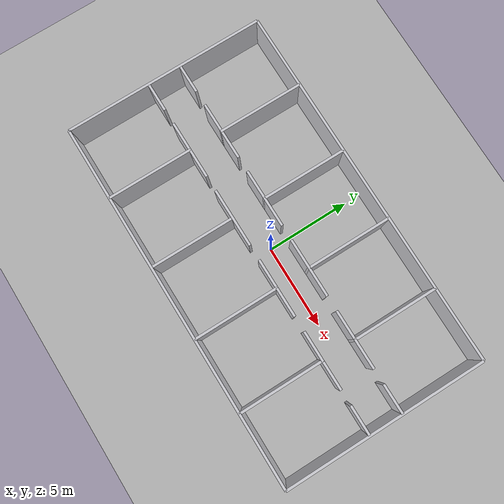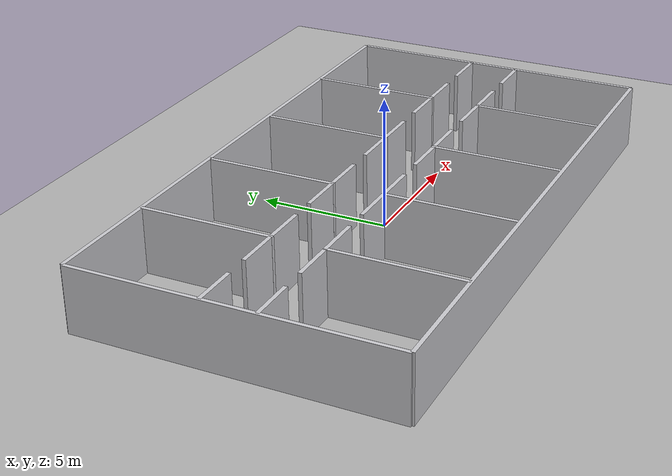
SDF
<?xml version="1.0"?>
<sdf version="1.8">
  <world name="office_world">
    <physics name="default_physics" type="dartsim">
      <max_step_size>0.004</max_step_size>
      <real_time_factor>1.0</real_time_factor>
    </physics>

    <plugin filename="gz-sim-physics-system" name="gz::sim::systems::Physics"/>
    <plugin filename="gz-sim-sensors-system" name="gz::sim::systems::Sensors">
      <render_engine>ogre2</render_engine>
    </plugin>
    <plugin filename="gz-sim-scene-broadcaster-system" name="gz::sim::systems::SceneBroadcaster"/>
    <plugin filename="gz-sim-user-commands-system" name="gz::sim::systems::UserCommands"/>

    <light type="directional" name="sun">
      <cast_shadows>false</cast_shadows>
      <pose>0 0 10 0 0 0</pose>
      <diffuse>0.8 0.8 0.8 1</diffuse>
      <direction>-0.5 0.1 -0.9</direction>
    </light>

    <model name="ground_plane">
      <static>true</static>
      <link name="link">
        <collision name="collision">
          <geometry><plane><normal>0 0 1</normal><size>30 20</size></plane></geometry>
        </collision>
        <visual name="visual">
          <geometry><plane><normal>0 0 1</normal><size>30 20</size></plane></geometry>
          <material><ambient>0.7 0.7 0.7 1</ambient><diffuse>0.7 0.7 0.7 1</diffuse></material>
        </visual>
      </link>
    </model>

    <model name="building">
      <static>true</static>
      <link name="link">
        <collision name="c0">
          <pose>0 6 1.25 0 0 0</pose>
          <geometry><box><size>22 0.15 2.5</size></box></geometry>
        </collision>
        <visual name="v0">
          <pose>0 6 1.25 0 0 0</pose>
          <geometry><box><size>22 0.15 2.5</size></box></geometry>
          <material><ambient>0.8 0.8 0.82 1</ambient><diffuse>0.8 0.8 0.82 1</diffuse></material>
        </visual>
        <collision name="c1">
          <pose>0 -6 1.25 0 0 0</pose>
          <geometry><box><size>22 0.15 2.5</size></box></geometry>
        </collision>
        <visual name="v1">
          <pose>0 -6 1.25 0 0 0</pose>
          <geometry><box><size>22 0.15 2.5</size></box></geometry>
          <material><ambient>0.8 0.8 0.82 1</ambient><diffuse>0.8 0.8 0.82 1</diffuse></material>
        </visual>
        <collision name="c2">
          <pose>-11 0 1.25 0 0 0</pose>
          <geometry><box><size>0.15 12 2.5</size></box></geometry>
        </collision>
        <visual name="v2">
          <pose>-11 0 1.25 0 0 0</pose>
          <geometry><box><size>0.15 12 2.5</size></box></geometry>
          <material><ambient>0.8 0.8 0.82 1</ambient><diffuse>0.8 0.8 0.82 1</diffuse></material>
        </visual>
        <collision name="c3">
          <pose>11 0 1.25 0 0 0</pose>
          <geometry><box><size>0.15 12 2.5</size></box></geometry>
        </collision>
        <visual name="v3">
          <pose>11 0 1.25 0 0 0</pose>
          <geometry><box><size>0.15 12 2.5</size></box></geometry>
          <material><ambient>0.8 0.8 0.82 1</ambient><diffuse>0.8 0.8 0.82 1</diffuse></material>
        </visual>
        <collision name="c4">
          <pose>-10.12 1 1.25 0 0 0</pose>
          <geometry><box><size>1.75 0.15 2.5</size></box></geometry>
        </collision>
        <visual name="v4">
          <pose>-10.12 1 1.25 0 0 0</pose>
          <geometry><box><size>1.75 0.15 2.5</size></box></geometry>
          <material><ambient>0.8 0.8 0.82 1</ambient><diffuse>0.8 0.8 0.82 1</diffuse></material>
        </visual>
        <collision name="c5">
          <pose>-6.6 1 1.25 0 0 0</pose>
          <geometry><box><size>3.5 0.15 2.5</size></box></geometry>
        </collision>
        <visual name="v5">
          <pose>-6.6 1 1.25 0 0 0</pose>
          <geometry><box><size>3.5 0.15 2.5</size></box></geometry>
          <material><ambient>0.8 0.8 0.82 1</ambient><diffuse>0.8 0.8 0.82 1</diffuse></material>
        </visual>
        <collision name="c6">
          <pose>-2.2 1 1.25 0 0 0</pose>
          <geometry><box><size>3.5 0.15 2.5</size></box></geometry>
        </collision>
        <visual name="v6">
          <pose>-2.2 1 1.25 0 0 0</pose>
          <geometry><box><size>3.5 0.15 2.5</size></box></geometry>
          <material><ambient>0.8 0.8 0.82 1</ambient><diffuse>0.8 0.8 0.82 1</diffuse></material>
        </visual>
        <collision name="c7">
          <pose>2.2 1 1.25 0 0 0</pose>
          <geometry><box><size>3.5 0.15 2.5</size></box></geometry>
        </collision>
        <visual name="v7">
          <pose>2.2 1 1.25 0 0 0</pose>
          <geometry><box><size>3.5 0.15 2.5</size></box></geometry>
          <material><ambient>0.8 0.8 0.82 1</ambient><diffuse>0.8 0.8 0.82 1</diffuse></material>
        </visual>
        <collision name="c8">
          <pose>6.6 1 1.25 0 0 0</pose>
          <geometry><box><size>3.5 0.15 2.5</size></box></geometry>
        </collision>
        <visual name="v8">
          <pose>6.6 1 1.25 0 0 0</pose>
          <geometry><box><size>3.5 0.15 2.5</size></box></geometry>
          <material><ambient>0.8 0.8 0.82 1</ambient><diffuse>0.8 0.8 0.82 1</diffuse></material>
        </visual>
        <collision name="c9">
          <pose>10.12 1 1.25 0 0 0</pose>
          <geometry><box><size>1.75 0.15 2.5</size></box></geometry>
        </collision>
        <visual name="v9">
          <pose>10.12 1 1.25 0 0 0</pose>
          <geometry><box><size>1.75 0.15 2.5</size></box></geometry>
          <material><ambient>0.8 0.8 0.82 1</ambient><diffuse>0.8 0.8 0.82 1</diffuse></material>
        </visual>
        <collision name="c10">
          <pose>-10.12 -1 1.25 0 0 0</pose>
          <geometry><box><size>1.75 0.15 2.5</size></box></geometry>
        </collision>
        <visual name="v10">
          <pose>-10.12 -1 1.25 0 0 0</pose>
          <geometry><box><size>1.75 0.15 2.5</size></box></geometry>
          <material><ambient>0.8 0.8 0.82 1</ambient><diffuse>0.8 0.8 0.82 1</diffuse></material>
        </visual>
        <collision name="c11">
          <pose>-6.6 -1 1.25 0 0 0</pose>
          <geometry><box><size>3.5 0.15 2.5</size></box></geometry>
        </collision>
        <visual name="v11">
          <pose>-6.6 -1 1.25 0 0 0</pose>
          <geometry><box><size>3.5 0.15 2.5</size></box></geometry>
          <material><ambient>0.8 0.8 0.82 1</ambient><diffuse>0.8 0.8 0.82 1</diffuse></material>
        </visual>
        <collision name="c12">
          <pose>-2.2 -1 1.25 0 0 0</pose>
          <geometry><box><size>3.5 0.15 2.5</size></box></geometry>
        </collision>
        <visual name="v12">
          <pose>-2.2 -1 1.25 0 0 0</pose>
          <geometry><box><size>3.5 0.15 2.5</size></box></geometry>
          <material><ambient>0.8 0.8 0.82 1</ambient><diffuse>0.8 0.8 0.82 1</diffuse></material>
        </visual>
        <collision name="c13">
          <pose>2.2 -1 1.25 0 0 0</pose>
          <geometry><box><size>3.5 0.15 2.5</size></box></geometry>
        </collision>
        <visual name="v13">
          <pose>2.2 -1 1.25 0 0 0</pose>
          <geometry><box><size>3.5 0.15 2.5</size></box></geometry>
          <material><ambient>0.8 0.8 0.82 1</ambient><diffuse>0.8 0.8 0.82 1</diffuse></material>
        </visual>
        <collision name="c14">
          <pose>6.6 -1 1.25 0 0 0</pose>
          <geometry><box><size>3.5 0.15 2.5</size></box></geometry>
        </collision>
        <visual name="v14">
          <pose>6.6 -1 1.25 0 0 0</pose>
          <geometry><box><size>3.5 0.15 2.5</size></box></geometry>
          <material><ambient>0.8 0.8 0.82 1</ambient><diffuse>0.8 0.8 0.82 1</diffuse></material>
        </visual>
        <collision name="c15">
          <pose>10.12 -1 1.25 0 0 0</pose>
          <geometry><box><size>1.75 0.15 2.5</size></box></geometry>
        </collision>
        <visual name="v15">
          <pose>10.12 -1 1.25 0 0 0</pose>
          <geometry><box><size>1.75 0.15 2.5</size></box></geometry>
          <material><ambient>0.8 0.8 0.82 1</ambient><diffuse>0.8 0.8 0.82 1</diffuse></material>
        </visual>
        <collision name="c16">
          <pose>-6.6 3.462 1.25 0 0 0</pose>
          <geometry><box><size>0.15 5.075 2.5</size></box></geometry>
        </collision>
        <visual name="v16">
          <pose>-6.6 3.462 1.25 0 0 0</pose>
          <geometry><box><size>0.15 5.075 2.5</size></box></geometry>
          <material><ambient>0.8 0.8 0.82 1</ambient><diffuse>0.8 0.8 0.82 1</diffuse></material>
        </visual>
        <collision name="c17">
          <pose>-6.6 -3.462 1.25 0 0 0</pose>
          <geometry><box><size>0.15 5.075 2.5</size></box></geometry>
        </collision>
        <visual name="v17">
          <pose>-6.6 -3.462 1.25 0 0 0</pose>
          <geometry><box><size>0.15 5.075 2.5</size></box></geometry>
          <material><ambient>0.8 0.8 0.82 1</ambient><diffuse>0.8 0.8 0.82 1</diffuse></material>
        </visual>
        <collision name="c18">
          <pose>-2.2 3.462 1.25 0 0 0</pose>
          <geometry><box><size>0.15 5.075 2.5</size></box></geometry>
        </collision>
        <visual name="v18">
          <pose>-2.2 3.462 1.25 0 0 0</pose>
          <geometry><box><size>0.15 5.075 2.5</size></box></geometry>
          <material><ambient>0.8 0.8 0.82 1</ambient><diffuse>0.8 0.8 0.82 1</diffuse></material>
        </visual>
        <collision name="c19">
          <pose>-2.2 -3.462 1.25 0 0 0</pose>
          <geometry><box><size>0.15 5.075 2.5</size></box></geometry>
        </collision>
        <visual name="v19">
          <pose>-2.2 -3.462 1.25 0 0 0</pose>
          <geometry><box><size>0.15 5.075 2.5</size></box></geometry>
          <material><ambient>0.8 0.8 0.82 1</ambient><diffuse>0.8 0.8 0.82 1</diffuse></material>
        </visual>
        <collision name="c20">
          <pose>2.2 3.462 1.25 0 0 0</pose>
          <geometry><box><size>0.15 5.075 2.5</size></box></geometry>
        </collision>
        <visual name="v20">
          <pose>2.2 3.462 1.25 0 0 0</pose>
          <geometry><box><size>0.15 5.075 2.5</size></box></geometry>
          <material><ambient>0.8 0.8 0.82 1</ambient><diffuse>0.8 0.8 0.82 1</diffuse></material>
        </visual>
        <collision name="c21">
          <pose>2.2 -3.462 1.25 0 0 0</pose>
          <geometry><box><size>0.15 5.075 2.5</size></box></geometry>
        </collision>
        <visual name="v21">
          <pose>2.2 -3.462 1.25 0 0 0</pose>
          <geometry><box><size>0.15 5.075 2.5</size></box></geometry>
          <material><ambient>0.8 0.8 0.82 1</ambient><diffuse>0.8 0.8 0.82 1</diffuse></material>
        </visual>
        <collision name="c22">
          <pose>6.6 3.462 1.25 0 0 0</pose>
          <geometry><box><size>0.15 5.075 2.5</size></box></geometry>
        </collision>
        <visual name="v22">
          <pose>6.6 3.462 1.25 0 0 0</pose>
          <geometry><box><size>0.15 5.075 2.5</size></box></geometry>
          <material><ambient>0.8 0.8 0.82 1</ambient><diffuse>0.8 0.8 0.82 1</diffuse></material>
        </visual>
        <collision name="c23">
          <pose>6.6 -3.462 1.25 0 0 0</pose>
          <geometry><box><size>0.15 5.075 2.5</size></box></geometry>
        </collision>
        <visual name="v23">
          <pose>6.6 -3.462 1.25 0 0 0</pose>
          <geometry><box><size>0.15 5.075 2.5</size></box></geometry>
          <material><ambient>0.8 0.8 0.82 1</ambient><diffuse>0.8 0.8 0.82 1</diffuse></material>
        </visual>
      </link>
    </model>
  </world>
</sdf>
